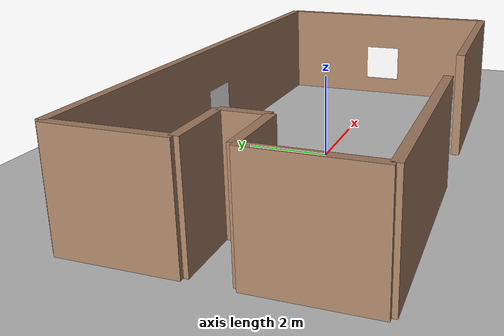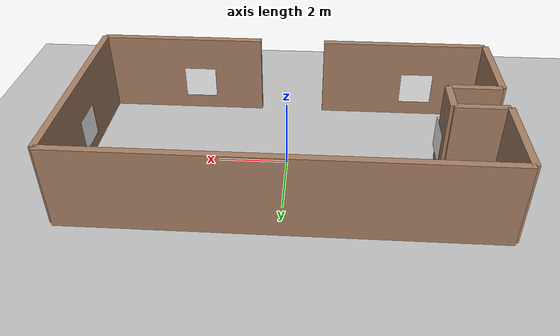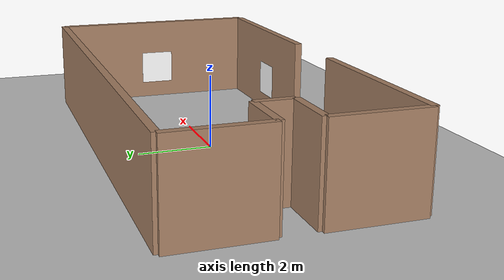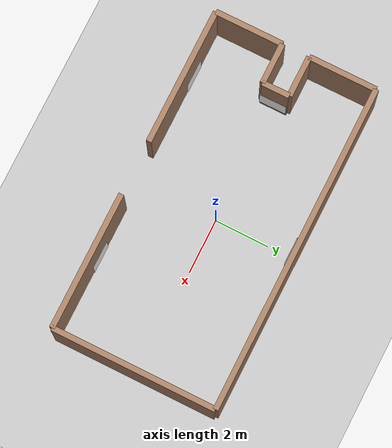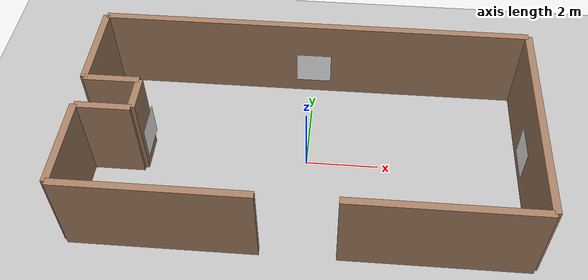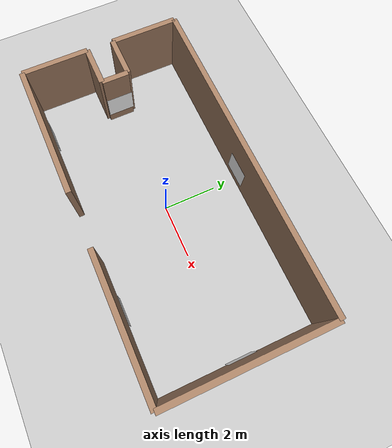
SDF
<?xml version="1.0"?><sdf version='1.10'>
  <world name='aruco_corridor_world'>
    <plugin name='gz::sim::systems::Physics' filename='gz-sim-physics-system'/>
    <plugin name='gz::sim::systems::UserCommands' filename='gz-sim-user-commands-system'/>
    <plugin name='gz::sim::systems::SceneBroadcaster' filename='gz-sim-scene-broadcaster-system'/>
    <plugin name='gz::sim::systems::Sensors' filename='gz-sim-sensors-system'>
      <render_engine>ogre2</render_engine>
    </plugin>

    <gravity>0 0 -9.8000000000000007</gravity>
    <magnetic_field>5.5644999999999998e-06 2.2875799999999999e-05 -4.2388400000000002e-05</magnetic_field>
    <atmosphere type='adiabatic'/>

    <physics type='ode'>
      <max_step_size>0.001</max_step_size>
      <real_time_factor>1</real_time_factor>
      <real_time_update_rate>1000</real_time_update_rate>
    </physics>

    <scene>
      <ambient>0.400000006 0.400000006 0.400000006 1</ambient>
      <background>0.699999988 0.699999988 0.699999988 1</background>
      <shadows>true</shadows>
    </scene>

    <model name='ground_plane'>
      <static>true</static>
      <link name='link'>
        <collision name='collision'>
          <geometry>
            <plane>
              <normal>0 0 1</normal>
              <size>60 60</size>
            </plane>
          </geometry>
          <surface>
            <friction>
              <ode/>
            </friction>
            <bounce/>
            <contact/>
          </surface>
        </collision>
        <visual name='visual'>
          <geometry>
            <plane>
              <normal>0 0 1</normal>
              <size>60 60</size>
            </plane>
          </geometry>
          <material>
            <ambient>0.75 0.75 0.75 1</ambient>
            <diffuse>0.75 0.75 0.75 1</diffuse>
          </material>
        </visual>
        <pose>0 0 0 0 0 0</pose>
        <inertial>
          <pose>0 0 0 0 0 0</pose>
          <mass>1</mass>
          <inertia>
            <ixx>1</ixx>
            <ixy>0</ixy>
            <ixz>0</ixz>
            <iyy>1</iyy>
            <iyz>0</iyz>
            <izz>1</izz>
          </inertia>
        </inertial>
        <enable_wind>false</enable_wind>
      </link>
      <pose>0 0 0 0 0 0</pose>
      <self_collide>false</self_collide>
    </model>

    <!-- ==================== OUTER PERIMETER WALLS ==================== -->

    <!-- Top wall (full width) - y=+3 -->
    <model name='top_wall'>
      <static>true</static>
      <pose>0.0 3.0 1.25 0 0 0</pose>
      <link name='link'>
        <collision name='collision'>
          <geometry><box><size>12.0 0.2 2.5</size></box></geometry>
          <surface><friction><ode/></friction><bounce/><contact/></surface>
        </collision>
        <visual name='visual'>
          <geometry><box><size>12.0 0.2 2.5</size></box></geometry>
          <material>
            <ambient>0.65 0.50 0.39 1</ambient>
            <diffuse>0.65 0.50 0.39 1</diffuse>
          </material>
        </visual>
        <pose>0 0 0 0 0 0</pose>
        <inertial><pose>0 0 0 0 0 0</pose><mass>1</mass>
          <inertia><ixx>1</ixx><ixy>0</ixy><ixz>0</ixz><iyy>1</iyy><iyz>0</iyz><izz>1</izz></inertia>
        </inertial>
        <enable_wind>false</enable_wind>
      </link>
      <self_collide>false</self_collide>
    </model>

    <!-- Right wall (full height) - x=+6 -->
    <model name='right_wall'>
      <static>true</static>
      <pose>6.0 0.0 1.25 0 0 0</pose>
      <link name='link'>
        <collision name='collision'>
          <geometry><box><size>0.2 6.0 2.5</size></box></geometry>
          <surface><friction><ode/></friction><bounce/><contact/></surface>
        </collision>
        <visual name='visual'>
          <geometry><box><size>0.2 6.0 2.5</size></box></geometry>
          <material>
            <ambient>0.65 0.50 0.39 1</ambient>
            <diffuse>0.65 0.50 0.39 1</diffuse>
          </material>
        </visual>
        <pose>0 0 0 0 0 0</pose>
        <inertial><pose>0 0 0 0 0 0</pose><mass>1</mass>
          <inertia><ixx>1</ixx><ixy>0</ixy><ixz>0</ixz><iyy>1</iyy><iyz>0</iyz><izz>1</izz></inertia>
        </inertial>
        <enable_wind>false</enable_wind>
      </link>
      <self_collide>false</self_collide>
    </model>

    <!-- Bottom wall LEFT segment: from x=-6 to x=-1  (5m long, centered at x=-3.5) -->
    <model name='bottom_wall_left'>
      <static>true</static>
      <pose>-3.5 -3.0 1.25 0 0 0</pose>
      <link name='link'>
        <collision name='collision'>
          <geometry><box><size>5.0 0.2 2.5</size></box></geometry>
          <surface><friction><ode/></friction><bounce/><contact/></surface>
        </collision>
        <visual name='visual'>
          <geometry><box><size>5.0 0.2 2.5</size></box></geometry>
          <material>
            <ambient>0.65 0.50 0.39 1</ambient>
            <diffuse>0.65 0.50 0.39 1</diffuse>
          </material>
        </visual>
        <pose>0 0 0 0 0 0</pose>
        <inertial><pose>0 0 0 0 0 0</pose><mass>1</mass>
          <inertia><ixx>1</ixx><ixy>0</ixy><ixz>0</ixz><iyy>1</iyy><iyz>0</iyz><izz>1</izz></inertia>
        </inertial>
        <enable_wind>false</enable_wind>
      </link>
      <self_collide>false</self_collide>
    </model>

    <!-- OPENING GAP at bottom: from x=-1 to x=+1  (2m wide) — no wall here -->

    <!-- Bottom wall RIGHT segment: from x=+1 to x=+6  (5m long, centered at x=3.5) -->
    <model name='bottom_wall_right'>
      <static>true</static>
      <pose>3.5 -3.0 1.25 0 0 0</pose>
      <link name='link'>
        <collision name='collision'>
          <geometry><box><size>5.0 0.2 2.5</size></box></geometry>
          <surface><friction><ode/></friction><bounce/><contact/></surface>
        </collision>
        <visual name='visual'>
          <geometry><box><size>5.0 0.2 2.5</size></box></geometry>
          <material>
            <ambient>0.65 0.50 0.39 1</ambient>
            <diffuse>0.65 0.50 0.39 1</diffuse>
          </material>
        </visual>
        <pose>0 0 0 0 0 0</pose>
        <inertial><pose>0 0 0 0 0 0</pose><mass>1</mass>
          <inertia><ixx>1</ixx><ixy>0</ixy><ixz>0</ixz><iyy>1</iyy><iyz>0</iyz><izz>1</izz></inertia>
        </inertial>
        <enable_wind>false</enable_wind>
      </link>
      <self_collide>false</self_collide>
    </model>

    <!-- Left wall BOTTOM segment: from y=-3 to y=-0.5  (2.5m, centered at y=-1.75) -->
    <model name='left_wall_bottom'>
      <static>true</static>
      <pose>-6.0 -1.75 1.25 0 0 0</pose>
      <link name='link'>
        <collision name='collision'>
          <geometry><box><size>0.2 2.5 2.5</size></box></geometry>
          <surface><friction><ode/></friction><bounce/><contact/></surface>
        </collision>
        <visual name='visual'>
          <geometry><box><size>0.2 2.5 2.5</size></box></geometry>
          <material>
            <ambient>0.65 0.50 0.39 1</ambient>
            <diffuse>0.65 0.50 0.39 1</diffuse>
          </material>
        </visual>
        <pose>0 0 0 0 0 0</pose>
        <inertial><pose>0 0 0 0 0 0</pose><mass>1</mass>
          <inertia><ixx>1</ixx><ixy>0</ixy><ixz>0</ixz><iyy>1</iyy><iyz>0</iyz><izz>1</izz></inertia>
        </inertial>
        <enable_wind>false</enable_wind>
      </link>
      <self_collide>false</self_collide>
    </model>

    <!-- Left wall step bottom: horizontal shelf going inward at y=-0.5 -->
    <model name='left_wall_step_bottom'>
      <static>true</static>
      <pose>-5.25 -0.5 1.25 0 0 0</pose>
      <link name='link'>
        <collision name='collision'>
          <geometry><box><size>1.5 0.2 2.5</size></box></geometry>
          <surface><friction><ode/></friction><bounce/><contact/></surface>
        </collision>
        <visual name='visual'>
          <geometry><box><size>1.5 0.2 2.5</size></box></geometry>
          <material>
            <ambient>0.65 0.50 0.39 1</ambient>
            <diffuse>0.65 0.50 0.39 1</diffuse>
          </material>
        </visual>
        <pose>0 0 0 0 0 0</pose>
        <inertial><pose>0 0 0 0 0 0</pose><mass>1</mass>
          <inertia><ixx>1</ixx><ixy>0</ixy><ixz>0</ixz><iyy>1</iyy><iyz>0</iyz><izz>1</izz></inertia>
        </inertial>
        <enable_wind>false</enable_wind>
      </link>
      <self_collide>false</self_collide>
    </model>

    <!-- Left wall step inner: vertical segment from y=-0.5 to y=+0.5 at x=-4.5 -->
    <model name='left_wall_step_inner'>
      <static>true</static>
      <pose>-4.5 0.0 1.25 0 0 0</pose>
      <link name='link'>
        <collision name='collision'>
          <geometry><box><size>0.2 1.0 2.5</size></box></geometry>
          <surface><friction><ode/></friction><bounce/><contact/></surface>
        </collision>
        <visual name='visual'>
          <geometry><box><size>0.2 1.0 2.5</size></box></geometry>
          <material>
            <ambient>0.65 0.50 0.39 1</ambient>
            <diffuse>0.65 0.50 0.39 1</diffuse>
          </material>
        </visual>
        <pose>0 0 0 0 0 0</pose>
        <inertial><pose>0 0 0 0 0 0</pose><mass>1</mass>
          <inertia><ixx>1</ixx><ixy>0</ixy><ixz>0</ixz><iyy>1</iyy><iyz>0</iyz><izz>1</izz></inertia>
        </inertial>
        <enable_wind>false</enable_wind>
      </link>
      <self_collide>false</self_collide>
    </model>

    <!-- Left wall step top: horizontal shelf going outward at y=+0.5 -->
    <model name='left_wall_step_top'>
      <static>true</static>
      <pose>-5.25 0.5 1.25 0 0 0</pose>
      <link name='link'>
        <collision name='collision'>
          <geometry><box><size>1.5 0.2 2.5</size></box></geometry>
          <surface><friction><ode/></friction><bounce/><contact/></surface>
        </collision>
        <visual name='visual'>
          <geometry><box><size>1.5 0.2 2.5</size></box></geometry>
          <material>
            <ambient>0.65 0.50 0.39 1</ambient>
            <diffuse>0.65 0.50 0.39 1</diffuse>
          </material>
        </visual>
        <pose>0 0 0 0 0 0</pose>
        <inertial><pose>0 0 0 0 0 0</pose><mass>1</mass>
          <inertia><ixx>1</ixx><ixy>0</ixy><ixz>0</ixz><iyy>1</iyy><iyz>0</iyz><izz>1</izz></inertia>
        </inertial>
        <enable_wind>false</enable_wind>
      </link>
      <self_collide>false</self_collide>
    </model>

    <!-- Left wall TOP segment: from y=+0.5 to y=+3  (2.5m, centered at y=1.75) -->
    <model name='left_wall_top'>
      <static>true</static>
      <pose>-6.0 1.75 1.25 0 0 0</pose>
      <link name='link'>
        <collision name='collision'>
          <geometry><box><size>0.2 2.5 2.5</size></box></geometry>
          <surface><friction><ode/></friction><bounce/><contact/></surface>
        </collision>
        <visual name='visual'>
          <geometry><box><size>0.2 2.5 2.5</size></box></geometry>
          <material>
            <ambient>0.65 0.50 0.39 1</ambient>
            <diffuse>0.65 0.50 0.39 1</diffuse>
          </material>
        </visual>
        <pose>0 0 0 0 0 0</pose>
        <inertial><pose>0 0 0 0 0 0</pose><mass>1</mass>
          <inertia><ixx>1</ixx><ixy>0</ixy><ixz>0</ixz><iyy>1</iyy><iyz>0</iyz><izz>1</izz></inertia>
        </inertial>
        <enable_wind>false</enable_wind>
      </link>
      <self_collide>false</self_collide>
    </model>

    <!-- ==================== ARUCO MARKERS ==================== -->
    <!-- Marker 0: on bottom wall (inside face, facing +y) near right side -->
    <include>
      <uri>file:///home/shreya/trial3_ihub/install/my_robot_bringup/share/my_robot_bringup/models/aruco_marker_0</uri>
      <name>aruco_marker_0</name>
      <pose>3.0 -2.8 1.0 0 0 1.570796</pose>
    </include>

    <!-- Marker 1: on right wall (inside face, facing -x) -->
    <include>
      <uri>file:///home/shreya/trial3_ihub/install/my_robot_bringup/share/my_robot_bringup/models/aruco_marker_1</uri>
      <name>aruco_marker_1</name>
      <pose>5.8 0.0 1.0 0 0 3.141593</pose>
    </include>

    <!-- Marker 2: on top wall (inside face, facing -y) -->
    <include>
      <uri>file:///home/shreya/trial3_ihub/install/my_robot_bringup/share/my_robot_bringup/models/aruco_marker_2</uri>
      <name>aruco_marker_2</name>
      <pose>0.0 2.8 1.0 0 0 -1.570796</pose>
    </include>

    <!-- Marker 3: on left step wall (inside face, facing +x) -->
    <include>
      <uri>file:///home/shreya/trial3_ihub/install/my_robot_bringup/share/my_robot_bringup/models/aruco_marker_3</uri>
      <name>aruco_marker_3</name>
      <pose>-4.3 0.0 1.0 0 0 0.0</pose>
    </include>

    <!-- Marker 4: on bottom wall left (inside face, facing +y) near left side -->
    <include>
      <uri>file:///home/shreya/trial3_ihub/install/my_robot_bringup/share/my_robot_bringup/models/aruco_marker_4</uri>
      <name>aruco_marker_4</name>
      <pose>-4.0 -2.8 1.0 0 0 1.570796</pose>
    </include>

    <!-- ==================== LIGHTING ==================== -->
    <light name='sun' type='directional'>
      <pose>0 0 10 0 0 0</pose>
      <cast_shadows>false</cast_shadows>
      <intensity>1</intensity>
      <direction>-0.4 0.2 -1</direction>
      <diffuse>1 1 1 1</diffuse>
      <specular>0.3 0.3 0.3 1</specular>
      <attenuation>
        <range>10</range>
        <linear>1</linear>
        <constant>1</constant>
        <quadratic>0</quadratic>
      </attenuation>
      <spot>
        <inner_angle>0</inner_angle>
        <outer_angle>0</outer_angle>
        <falloff>0</falloff>
      </spot>
    </light>

  </world>
</sdf>

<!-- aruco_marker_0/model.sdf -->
<sdf version="1.8">
  <model name="aruco_marker_0">
    <static>true</static>
    <link name="link">
      <collision name="backing_collision">
        <pose>0 0 0 0 1.5708 0</pose>
        <geometry>
          <box>
            <size>0.03 1.1 1.1</size>
          </box>
        </geometry>
      </collision>
      <visual name="marker_visual">
        <pose>-0.02 0 0 0 1.5708 0</pose>
        <geometry>
          <plane>
            <normal>0 0 1</normal>
            <size>1.0 1.0</size>
          </plane>
        </geometry>
        <material>
          <ambient>1 1 1 1</ambient>
          <diffuse>1 1 1 1</diffuse>
          <specular>0 0 0 1</specular>
          <pbr>
            <metal>
              <albedo_map>model://aruco_marker_0/materials/textures/aruco_marker_0.png</albedo_map>
              <roughness>1.0</roughness>
              <metalness>0.0</metalness>
            </metal>
          </pbr>
        </material>
      </visual>
    </link>
  </model>
</sdf>

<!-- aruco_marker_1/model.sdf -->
<sdf version="1.8">
  <model name="aruco_marker_1">
    <static>true</static>
    <link name="link">
      <collision name="backing_collision">
        <pose>0 0 0 0 1.5708 0</pose>
        <geometry>
          <box>
            <size>0.03 1.1 1.1</size>
          </box>
        </geometry>
      </collision>
      <visual name="marker_visual">
        <pose>-0.02 0 0 0 1.5708 0</pose>
        <geometry>
          <plane>
            <normal>0 0 1</normal>
            <size>1.0 1.0</size>
          </plane>
        </geometry>
        <material>
          <ambient>1 1 1 1</ambient>
          <diffuse>1 1 1 1</diffuse>
          <specular>0 0 0 1</specular>
          <pbr>
            <metal>
              <albedo_map>model://aruco_marker_1/materials/textures/aruco_marker_1.png</albedo_map>
              <roughness>1.0</roughness>
              <metalness>0.0</metalness>
            </metal>
          </pbr>
        </material>
      </visual>
    </link>
  </model>
</sdf>

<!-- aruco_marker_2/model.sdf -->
<sdf version="1.8">
  <model name="aruco_marker_2">
    <static>true</static>
    <link name="link">
      <collision name="backing_collision">
        <pose>0 0 0 0 1.5708 0</pose>
        <geometry>
          <box>
            <size>0.03 1.1 1.1</size>
          </box>
        </geometry>
      </collision>
      <visual name="marker_visual">
        <pose>-0.02 0 0 0 1.5708 0</pose>
        <geometry>
          <plane>
            <normal>0 0 1</normal>
            <size>1.0 1.0</size>
          </plane>
        </geometry>
        <material>
          <ambient>1 1 1 1</ambient>
          <diffuse>1 1 1 1</diffuse>
          <specular>0 0 0 1</specular>
          <pbr>
            <metal>
              <albedo_map>model://aruco_marker_2/materials/textures/aruco_marker_2.png</albedo_map>
              <roughness>1.0</roughness>
              <metalness>0.0</metalness>
            </metal>
          </pbr>
        </material>
      </visual>
    </link>
  </model>
</sdf>

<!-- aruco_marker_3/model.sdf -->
<sdf version="1.8">
  <model name="aruco_marker_3">
    <static>true</static>
    <link name="link">
      <collision name="backing_collision">
        <pose>0 0 0 0 1.5708 0</pose>
        <geometry>
          <box>
            <size>0.03 1.1 1.1</size>
          </box>
        </geometry>
      </collision>
      <visual name="marker_visual">
        <pose>-0.02 0 0 0 1.5708 0</pose>
        <geometry>
          <plane>
            <normal>0 0 1</normal>
            <size>1.0 1.0</size>
          </plane>
        </geometry>
        <material>
          <ambient>1 1 1 1</ambient>
          <diffuse>1 1 1 1</diffuse>
          <specular>0 0 0 1</specular>
          <pbr>
            <metal>
              <albedo_map>model://aruco_marker_3/materials/textures/aruco_marker_3.png</albedo_map>
              <roughness>1.0</roughness>
              <metalness>0.0</metalness>
            </metal>
          </pbr>
        </material>
      </visual>
    </link>
  </model>
</sdf>

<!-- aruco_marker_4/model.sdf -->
<sdf version="1.8">
  <model name="aruco_marker_4">
    <static>true</static>
    <link name="link">
      <collision name="backing_collision">
        <pose>0 0 0 0 1.5708 0</pose>
        <geometry>
          <box>
            <size>0.03 1.1 1.1</size>
          </box>
        </geometry>
      </collision>
      <visual name="marker_visual">
        <pose>-0.02 0 0 0 1.5708 0</pose>
        <geometry>
          <plane>
            <normal>0 0 1</normal>
            <size>1.0 1.0</size>
          </plane>
        </geometry>
        <material>
          <ambient>1 1 1 1</ambient>
          <diffuse>1 1 1 1</diffuse>
          <specular>0 0 0 1</specular>
          <pbr>
            <metal>
              <albedo_map>model://aruco_marker_4/materials/textures/aruco_marker_4.png</albedo_map>
              <roughness>1.0</roughness>
              <metalness>0.0</metalness>
            </metal>
          </pbr>
        </material>
      </visual>
    </link>
  </model>
</sdf>
